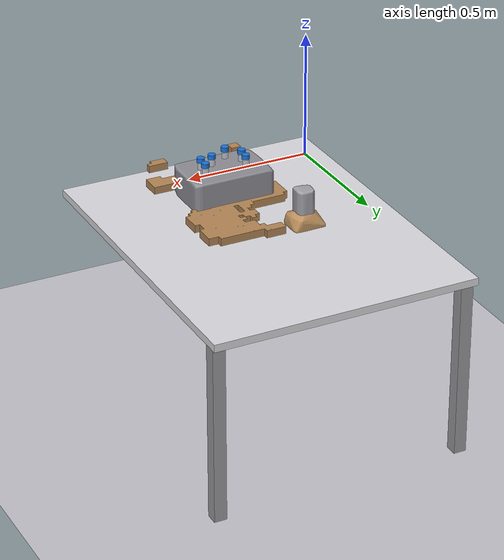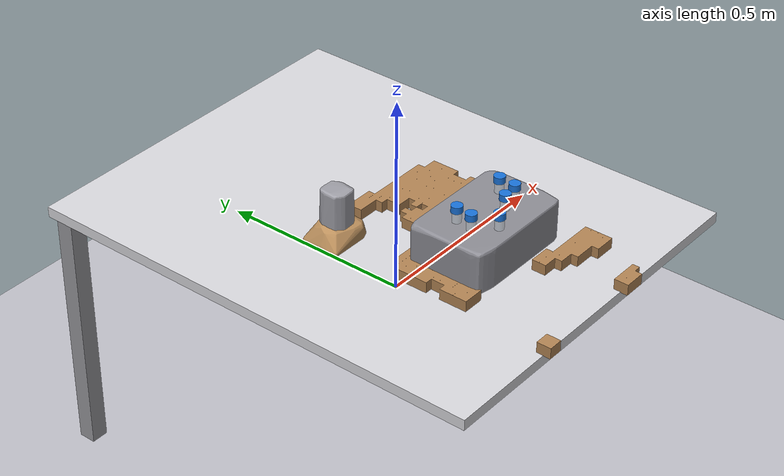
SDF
<sdf version="1.6">
 <world name="lwa4p_lab">
  <model name="floor">
   <static>true</static>
   <pose>0 0 -0.856 0 0 0</pose>
   <link name="l">
    <collision name="c"><geometry><plane><normal>0 0 1</normal><size>20 20</size></plane></geometry></collision>
    <visual name="v">
     <geometry><plane><normal>0 0 1</normal><size>20 20</size></plane></geometry>
     <material>
      <ambient>0.75 0.75 0.78 1.0</ambient>
      <diffuse>0.75 0.75 0.78 1.0</diffuse>
      <specular>0.2 0.2 0.2 1</specular>
     </material>
    </visual>
   </link>
  </model>
  <model name="table">
   <static>true</static>
   <pose>0.35 0.33 -0.121 0 0 0.0</pose>
   <link name="l">
    <collision name="c">
     <geometry><box><size>1.06 1.34 0.03</size></box></geometry>
     <surface><friction><ode><mu>0.8</mu><mu2>0.8</mu2></ode></friction></surface>
    </collision>
    <visual name="v">
     <geometry><box><size>1.06 1.34 0.03</size></box></geometry>
     <material>
      <ambient>0.85 0.85 0.87 1.0</ambient>
      <diffuse>0.85 0.85 0.87 1.0</diffuse>
      <specular>0.2 0.2 0.2 1</specular>
     </material>
    </visual>
   </link>
  </model>
  <model name="table_leg2">
   <static>true</static>
   <pose>-0.15 0.95 -0.486 0 0 0.0</pose>
   <link name="l">
    <collision name="c"><geometry><box><size>0.05 0.05 0.74</size></box></geometry></collision>
    <visual name="v">
     <geometry><box><size>0.05 0.05 0.74</size></box></geometry>
     <material>
      <ambient>0.6 0.6 0.62 1.0</ambient>
      <diffuse>0.6 0.6 0.62 1.0</diffuse>
      <specular>0.2 0.2 0.2 1</specular>
     </material>
    </visual>
   </link>
  </model>
  <model name="table_leg3">
   <static>true</static>
   <pose>0.85 0.95 -0.486 0 0 0.0</pose>
   <link name="l">
    <collision name="c"><geometry><box><size>0.05 0.05 0.74</size></box></geometry></collision>
    <visual name="v">
     <geometry><box><size>0.05 0.05 0.74</size></box></geometry>
     <material>
      <ambient>0.6 0.6 0.62 1.0</ambient>
      <diffuse>0.6 0.6 0.62 1.0</diffuse>
      <specular>0.2 0.2 0.2 1</specular>
     </material>
    </visual>
   </link>
  </model>
  <model name="tube_racks">
   <static>true</static>
   <link name="l">
    <collision name="c">
     <geometry><mesh><uri>model://lwa4p_description/meshes/workspace/tube_racks.stl</uri></mesh></geometry>
     <surface><contact><collide_bitmask>1</collide_bitmask></contact></surface>
    </collision>
    <visual name="v">
     <geometry><mesh><uri>model://lwa4p_description/meshes/workspace/tube_racks.stl</uri></mesh></geometry>
     <material>
      <ambient>0.55 0.55 0.58 1.0</ambient>
      <diffuse>0.55 0.55 0.58 1.0</diffuse>
      <specular>0.2 0.2 0.2 1</specular>
     </material>
    </visual>
   </link>
  </model>
  <model name="rack_support_1">
   <static>true</static>
   <pose>0.269 -0.013 -0.0245 0 0 0</pose>
   <link name="l">
    <collision name="c">
     <geometry><box><size>0.030 0.030 0.010</size></box></geometry>
     <surface><contact><collide_bitmask>2</collide_bitmask></contact></surface>
    </collision>
   </link>
  </model>
  <model name="rack_tube_1">
   <pose>0.269 -0.013 0 0 0 0</pose>
   <link name="l">
    <inertial>
     <pose>0 0 0.0263 0 0 0</pose>
     <mass>0.05</mass>
     <inertia><ixx>3.8e-5</ixx><iyy>3.8e-5</iyy><izz>3.9e-6</izz></inertia>
    </inertial>
    <collision name="body">
     <pose>0 0 0.0263 0 0 0</pose>
     <geometry><cylinder><radius>0.01225</radius><length>0.0905</length></cylinder></geometry>
     <surface>
      <friction><ode><mu>2.0</mu><mu2>2.0</mu2></ode></friction>
      <contact>
       <collide_bitmask>2</collide_bitmask>
       <ode><kp>1e6</kp><kd>100</kd><min_depth>0.0</min_depth><max_vel>0</max_vel></ode>
      </contact>
     </surface>
    </collision>
    <visual name="body">
     <pose>0 0 0.0263 0 0 0</pose>
     <geometry><cylinder><radius>0.01225</radius><length>0.0905</length></cylinder></geometry>
     <material>
      <ambient>0.85 0.92 0.95 0.35</ambient>
      <diffuse>0.85 0.92 0.95 0.35</diffuse>
      <specular>0.2 0.2 0.2 1</specular>
     </material>
    </visual>
    <collision name="cap">
     <pose>0 0 0.0648 0 0 0</pose>
     <geometry><cylinder><radius>0.0155</radius><length>0.0185</length></cylinder></geometry>
     <surface>
      <friction><ode><mu>2.0</mu><mu2>2.0</mu2></ode></friction>
      <contact>
       <collide_bitmask>2</collide_bitmask>
       <ode><kp>1e6</kp><kd>100</kd><min_depth>0.0</min_depth><max_vel>0</max_vel></ode>
      </contact>
     </surface>
    </collision>
    <visual name="cap">
     <pose>0 0 0.0648 0 0 0</pose>
     <geometry><cylinder><radius>0.0155</radius><length>0.0185</length></cylinder></geometry>
     <material>
      <ambient>0.10 0.45 0.85 1.0</ambient>
      <diffuse>0.10 0.45 0.85 1.0</diffuse>
      <specular>0.2 0.2 0.2 1</specular>
     </material>
    </visual>
   </link>
  </model>
  <model name="rack_support_2">
   <static>true</static>
   <pose>0.274 0.034 -0.0245 0 0 0</pose>
   <link name="l">
    <collision name="c">
     <geometry><box><size>0.030 0.030 0.010</size></box></geometry>
     <surface><contact><collide_bitmask>2</collide_bitmask></contact></surface>
    </collision>
   </link>
  </model>
  <model name="rack_tube_2">
   <pose>0.274 0.034 0 0 0 0</pose>
   <link name="l">
    <inertial>
     <pose>0 0 0.0263 0 0 0</pose>
     <mass>0.05</mass>
     <inertia><ixx>3.8e-5</ixx><iyy>3.8e-5</iyy><izz>3.9e-6</izz></inertia>
    </inertial>
    <collision name="body">
     <pose>0 0 0.0263 0 0 0</pose>
     <geometry><cylinder><radius>0.01225</radius><length>0.0905</length></cylinder></geometry>
     <surface>
      <friction><ode><mu>2.0</mu><mu2>2.0</mu2></ode></friction>
      <contact>
       <collide_bitmask>2</collide_bitmask>
       <ode><kp>1e6</kp><kd>100</kd><min_depth>0.0</min_depth><max_vel>0</max_vel></ode>
      </contact>
     </surface>
    </collision>
    <visual name="body">
     <pose>0 0 0.0263 0 0 0</pose>
     <geometry><cylinder><radius>0.01225</radius><length>0.0905</length></cylinder></geometry>
     <material>
      <ambient>0.85 0.92 0.95 0.35</ambient>
      <diffuse>0.85 0.92 0.95 0.35</diffuse>
      <specular>0.2 0.2 0.2 1</specular>
     </material>
    </visual>
    <collision name="cap">
     <pose>0 0 0.0648 0 0 0</pose>
     <geometry><cylinder><radius>0.0155</radius><length>0.0185</length></cylinder></geometry>
     <surface>
      <friction><ode><mu>2.0</mu><mu2>2.0</mu2></ode></friction>
      <contact>
       <collide_bitmask>2</collide_bitmask>
       <ode><kp>1e6</kp><kd>100</kd><min_depth>0.0</min_depth><max_vel>0</max_vel></ode>
      </contact>
     </surface>
    </collision>
    <visual name="cap">
     <pose>0 0 0.0648 0 0 0</pose>
     <geometry><cylinder><radius>0.0155</radius><length>0.0185</length></cylinder></geometry>
     <material>
      <ambient>0.10 0.45 0.85 1.0</ambient>
      <diffuse>0.10 0.45 0.85 1.0</diffuse>
      <specular>0.2 0.2 0.2 1</specular>
     </material>
    </visual>
   </link>
  </model>
  <model name="rack_tube_3">
   <pose>0.315 -0.064 0 0 0 0</pose>
   <link name="l">
    <inertial>
     <pose>0 0 0.0263 0 0 0</pose>
     <mass>0.05</mass>
     <inertia><ixx>3.8e-5</ixx><iyy>3.8e-5</iyy><izz>3.9e-6</izz></inertia>
    </inertial>
    <collision name="body">
     <pose>0 0 0.0263 0 0 0</pose>
     <geometry><cylinder><radius>0.01225</radius><length>0.0905</length></cylinder></geometry>
     <surface>
      <friction><ode><mu>2.0</mu><mu2>2.0</mu2></ode></friction>
      <contact>
       <collide_bitmask>2</collide_bitmask>
       <ode><kp>1e6</kp><kd>100</kd><min_depth>0.0</min_depth><max_vel>0</max_vel></ode>
      </contact>
     </surface>
    </collision>
    <visual name="body">
     <pose>0 0 0.0263 0 0 0</pose>
     <geometry><cylinder><radius>0.01225</radius><length>0.0905</length></cylinder></geometry>
     <material>
      <ambient>0.85 0.92 0.95 0.35</ambient>
      <diffuse>0.85 0.92 0.95 0.35</diffuse>
      <specular>0.2 0.2 0.2 1</specular>
     </material>
    </visual>
    <collision name="cap">
     <pose>0 0 0.0648 0 0 0</pose>
     <geometry><cylinder><radius>0.0155</radius><length>0.0185</length></cylinder></geometry>
     <surface>
      <friction><ode><mu>2.0</mu><mu2>2.0</mu2></ode></friction>
      <contact>
       <collide_bitmask>2</collide_bitmask>
       <ode><kp>1e6</kp><kd>100</kd><min_depth>0.0</min_depth><max_vel>0</max_vel></ode>
      </contact>
     </surface>
    </collision>
    <visual name="cap">
     <pose>0 0 0.0648 0 0 0</pose>
     <geometry><cylinder><radius>0.0155</radius><length>0.0185</length></cylinder></geometry>
     <material>
      <ambient>0.10 0.45 0.85 1.0</ambient>
      <diffuse>0.10 0.45 0.85 1.0</diffuse>
      <specular>0.2 0.2 0.2 1</specular>
     </material>
    </visual>
   </link>
  </model>
  <model name="rack_support_4">
   <static>true</static>
   <pose>0.39 -0.025 -0.0245 0 0 0</pose>
   <link name="l">
    <collision name="c">
     <geometry><box><size>0.030 0.030 0.010</size></box></geometry>
     <surface><contact><collide_bitmask>2</collide_bitmask></contact></surface>
    </collision>
   </link>
  </model>
  <model name="rack_tube_4">
   <pose>0.39 -0.025 0 0 0 0</pose>
   <link name="l">
    <inertial>
     <pose>0 0 0.0263 0 0 0</pose>
     <mass>0.05</mass>
     <inertia><ixx>3.8e-5</ixx><iyy>3.8e-5</iyy><izz>3.9e-6</izz></inertia>
    </inertial>
    <collision name="body">
     <pose>0 0 0.0263 0 0 0</pose>
     <geometry><cylinder><radius>0.01225</radius><length>0.0905</length></cylinder></geometry>
     <surface>
      <friction><ode><mu>2.0</mu><mu2>2.0</mu2></ode></friction>
      <contact>
       <collide_bitmask>2</collide_bitmask>
       <ode><kp>1e6</kp><kd>100</kd><min_depth>0.0</min_depth><max_vel>0</max_vel></ode>
      </contact>
     </surface>
    </collision>
    <visual name="body">
     <pose>0 0 0.0263 0 0 0</pose>
     <geometry><cylinder><radius>0.01225</radius><length>0.0905</length></cylinder></geometry>
     <material>
      <ambient>0.85 0.92 0.95 0.35</ambient>
      <diffuse>0.85 0.92 0.95 0.35</diffuse>
      <specular>0.2 0.2 0.2 1</specular>
     </material>
    </visual>
    <collision name="cap">
     <pose>0 0 0.0648 0 0 0</pose>
     <geometry><cylinder><radius>0.0155</radius><length>0.0185</length></cylinder></geometry>
     <surface>
      <friction><ode><mu>2.0</mu><mu2>2.0</mu2></ode></friction>
      <contact>
       <collide_bitmask>2</collide_bitmask>
       <ode><kp>1e6</kp><kd>100</kd><min_depth>0.0</min_depth><max_vel>0</max_vel></ode>
      </contact>
     </surface>
    </collision>
    <visual name="cap">
     <pose>0 0 0.0648 0 0 0</pose>
     <geometry><cylinder><radius>0.0155</radius><length>0.0185</length></cylinder></geometry>
     <material>
      <ambient>0.10 0.45 0.85 1.0</ambient>
      <diffuse>0.10 0.45 0.85 1.0</diffuse>
      <specular>0.2 0.2 0.2 1</specular>
     </material>
    </visual>
   </link>
  </model>
  <model name="rack_support_6">
   <static>true</static>
   <pose>0.44 -0.017 -0.0245 0 0 0</pose>
   <link name="l">
    <collision name="c">
     <geometry><box><size>0.030 0.030 0.010</size></box></geometry>
     <surface><contact><collide_bitmask>2</collide_bitmask></contact></surface>
    </collision>
   </link>
  </model>
  <model name="rack_tube_6">
   <pose>0.44 -0.017 0 0 0 0</pose>
   <link name="l">
    <inertial>
     <pose>0 0 0.0263 0 0 0</pose>
     <mass>0.05</mass>
     <inertia><ixx>3.8e-5</ixx><iyy>3.8e-5</iyy><izz>3.9e-6</izz></inertia>
    </inertial>
    <collision name="body">
     <pose>0 0 0.0263 0 0 0</pose>
     <geometry><cylinder><radius>0.01225</radius><length>0.0905</length></cylinder></geometry>
     <surface>
      <friction><ode><mu>2.0</mu><mu2>2.0</mu2></ode></friction>
      <contact>
       <collide_bitmask>2</collide_bitmask>
       <ode><kp>1e6</kp><kd>100</kd><min_depth>0.0</min_depth><max_vel>0</max_vel></ode>
      </contact>
     </surface>
    </collision>
    <visual name="body">
     <pose>0 0 0.0263 0 0 0</pose>
     <geometry><cylinder><radius>0.01225</radius><length>0.0905</length></cylinder></geometry>
     <material>
      <ambient>0.85 0.92 0.95 0.35</ambient>
      <diffuse>0.85 0.92 0.95 0.35</diffuse>
      <specular>0.2 0.2 0.2 1</specular>
     </material>
    </visual>
    <collision name="cap">
     <pose>0 0 0.0648 0 0 0</pose>
     <geometry><cylinder><radius>0.0155</radius><length>0.0185</length></cylinder></geometry>
     <surface>
      <friction><ode><mu>2.0</mu><mu2>2.0</mu2></ode></friction>
      <contact>
       <collide_bitmask>2</collide_bitmask>
       <ode><kp>1e6</kp><kd>100</kd><min_depth>0.0</min_depth><max_vel>0</max_vel></ode>
      </contact>
     </surface>
    </collision>
    <visual name="cap">
     <pose>0 0 0.0648 0 0 0</pose>
     <geometry><cylinder><radius>0.0155</radius><length>0.0185</length></cylinder></geometry>
     <material>
      <ambient>0.10 0.45 0.85 1.0</ambient>
      <diffuse>0.10 0.45 0.85 1.0</diffuse>
      <specular>0.2 0.2 0.2 1</specular>
     </material>
    </visual>
   </link>
  </model>
  <model name="rack_support_7">
   <static>true</static>
   <pose>0.444 0.032 -0.0245 0 0 0</pose>
   <link name="l">
    <collision name="c">
     <geometry><box><size>0.030 0.030 0.010</size></box></geometry>
     <surface><contact><collide_bitmask>2</collide_bitmask></contact></surface>
    </collision>
   </link>
  </model>
  <model name="rack_tube_7">
   <pose>0.444 0.032 0 0 0 0</pose>
   <link name="l">
    <inertial>
     <pose>0 0 0.0263 0 0 0</pose>
     <mass>0.05</mass>
     <inertia><ixx>3.8e-5</ixx><iyy>3.8e-5</iyy><izz>3.9e-6</izz></inertia>
    </inertial>
    <collision name="body">
     <pose>0 0 0.0263 0 0 0</pose>
     <geometry><cylinder><radius>0.01225</radius><length>0.0905</length></cylinder></geometry>
     <surface>
      <friction><ode><mu>2.0</mu><mu2>2.0</mu2></ode></friction>
      <contact>
       <collide_bitmask>2</collide_bitmask>
       <ode><kp>1e6</kp><kd>100</kd><min_depth>0.0</min_depth><max_vel>0</max_vel></ode>
      </contact>
     </surface>
    </collision>
    <visual name="body">
     <pose>0 0 0.0263 0 0 0</pose>
     <geometry><cylinder><radius>0.01225</radius><length>0.0905</length></cylinder></geometry>
     <material>
      <ambient>0.85 0.92 0.95 0.35</ambient>
      <diffuse>0.85 0.92 0.95 0.35</diffuse>
      <specular>0.2 0.2 0.2 1</specular>
     </material>
    </visual>
    <collision name="cap">
     <pose>0 0 0.0648 0 0 0</pose>
     <geometry><cylinder><radius>0.0155</radius><length>0.0185</length></cylinder></geometry>
     <surface>
      <friction><ode><mu>2.0</mu><mu2>2.0</mu2></ode></friction>
      <contact>
       <collide_bitmask>2</collide_bitmask>
       <ode><kp>1e6</kp><kd>100</kd><min_depth>0.0</min_depth><max_vel>0</max_vel></ode>
      </contact>
     </surface>
    </collision>
    <visual name="cap">
     <pose>0 0 0.0648 0 0 0</pose>
     <geometry><cylinder><radius>0.0155</radius><length>0.0185</length></cylinder></geometry>
     <material>
      <ambient>0.10 0.45 0.85 1.0</ambient>
      <diffuse>0.10 0.45 0.85 1.0</diffuse>
      <specular>0.2 0.2 0.2 1</specular>
     </material>
    </visual>
   </link>
  </model>
  <model name="holder_base">
   <static>true</static>
   <link name="l">
    <collision name="c">
     <geometry><mesh><uri>model://lwa4p_description/meshes/workspace/holder_base.stl</uri></mesh></geometry>
     <surface><contact><collide_bitmask>1</collide_bitmask></contact></surface>
    </collision>
    <visual name="v">
     <geometry><mesh><uri>model://lwa4p_description/meshes/workspace/holder_base.stl</uri></mesh></geometry>
     <material>
      <ambient>0.72 0.55 0.35 1.0</ambient>
      <diffuse>0.72 0.55 0.35 1.0</diffuse>
      <specular>0.2 0.2 0.2 1</specular>
     </material>
    </visual>
   </link>
  </model>
  <model name="holder_top">
   <static>true</static>
   <link name="l">
    <collision name="c">
     <geometry><mesh><uri>model://lwa4p_description/meshes/workspace/holder_top.stl</uri></mesh></geometry>
     <surface><contact><collide_bitmask>1</collide_bitmask></contact></surface>
    </collision>
    <visual name="v">
     <geometry><mesh><uri>model://lwa4p_description/meshes/workspace/holder_top.stl</uri></mesh></geometry>
     <material>
      <ambient>0.62 0.62 0.65 1.0</ambient>
      <diffuse>0.62 0.62 0.65 1.0</diffuse>
      <specular>0.2 0.2 0.2 1</specular>
     </material>
    </visual>
   </link>
  </model>
  <model name="low_layer">
   <static>true</static>
   <link name="l">
    <visual name="v">
     <geometry><mesh><uri>model://lwa4p_description/meshes/workspace/low_layer.stl</uri></mesh></geometry>
     <material>
      <ambient>0.70 0.52 0.33 1.0</ambient>
      <diffuse>0.70 0.52 0.33 1.0</diffuse>
      <specular>0.2 0.2 0.2 1</specular>
     </material>
    </visual>
   </link>
  </model>
  <model name="holder_guide">
   <static>true</static>
   <pose>0.18 0.339 0 0 0 0</pose>
   <link name="l">
    <collision name="floor">
     <pose>0 0 -0.0600 0 0 0</pose>
     <geometry><box><size>0.05 0.05 0.010</size></box></geometry>
     <surface><contact><collide_bitmask>2</collide_bitmask></contact></surface>
    </collision>
    <collision name="wx0">
     <pose>0.020999999999999998 0 -0.0055 0 0 0</pose>
     <geometry><box><size>0.004 0.046 0.0990</size></box></geometry>
     <surface><contact><collide_bitmask>2</collide_bitmask></contact></surface>
    </collision>
    <collision name="wx1">
     <pose>-0.020999999999999998 0 -0.0055 0 0 0</pose>
     <geometry><box><size>0.004 0.046 0.0990</size></box></geometry>
     <surface><contact><collide_bitmask>2</collide_bitmask></contact></surface>
    </collision>
    <collision name="wy0">
     <pose>0 0.020999999999999998 -0.0055 0 0 0</pose>
     <geometry><box><size>0.046 0.004 0.0990</size></box></geometry>
     <surface><contact><collide_bitmask>2</collide_bitmask></contact></surface>
    </collision>
    <collision name="wy1">
     <pose>0 -0.020999999999999998 -0.0055 0 0 0</pose>
     <geometry><box><size>0.046 0.004 0.0990</size></box></geometry>
     <surface><contact><collide_bitmask>2</collide_bitmask></contact></surface>
    </collision>
   </link>
  </model>
 </world>
</sdf>
